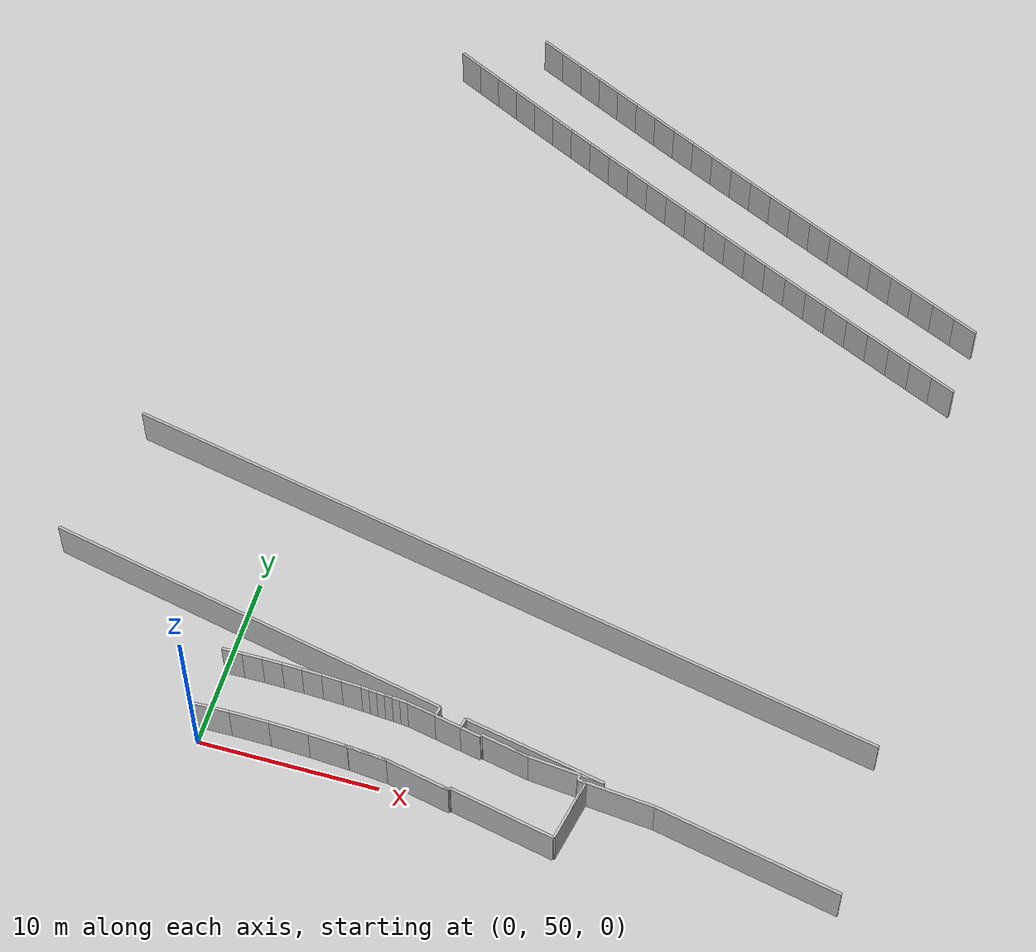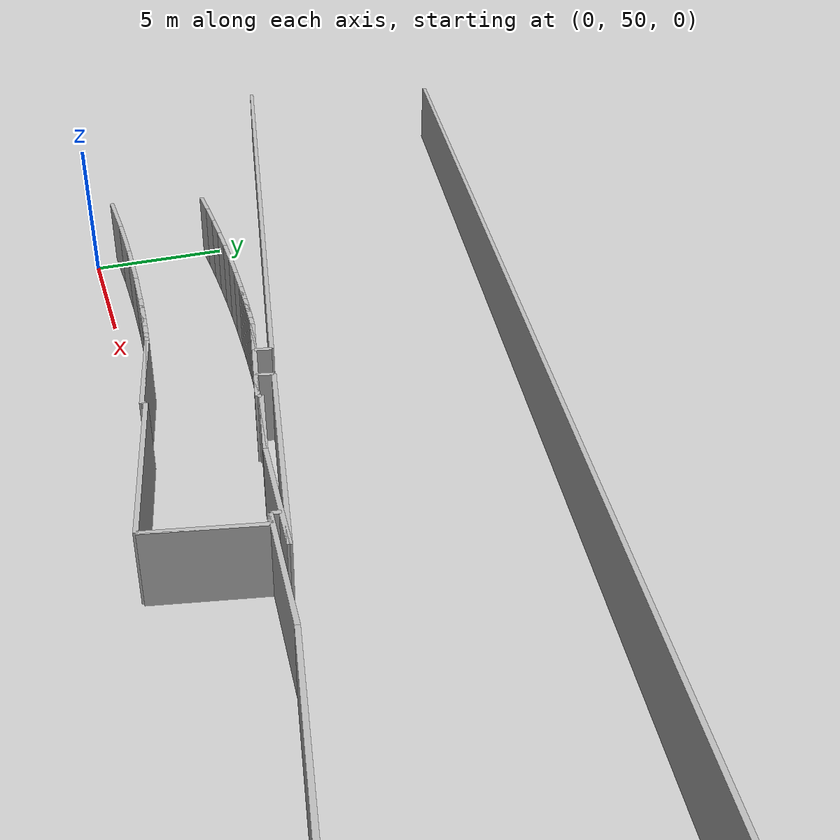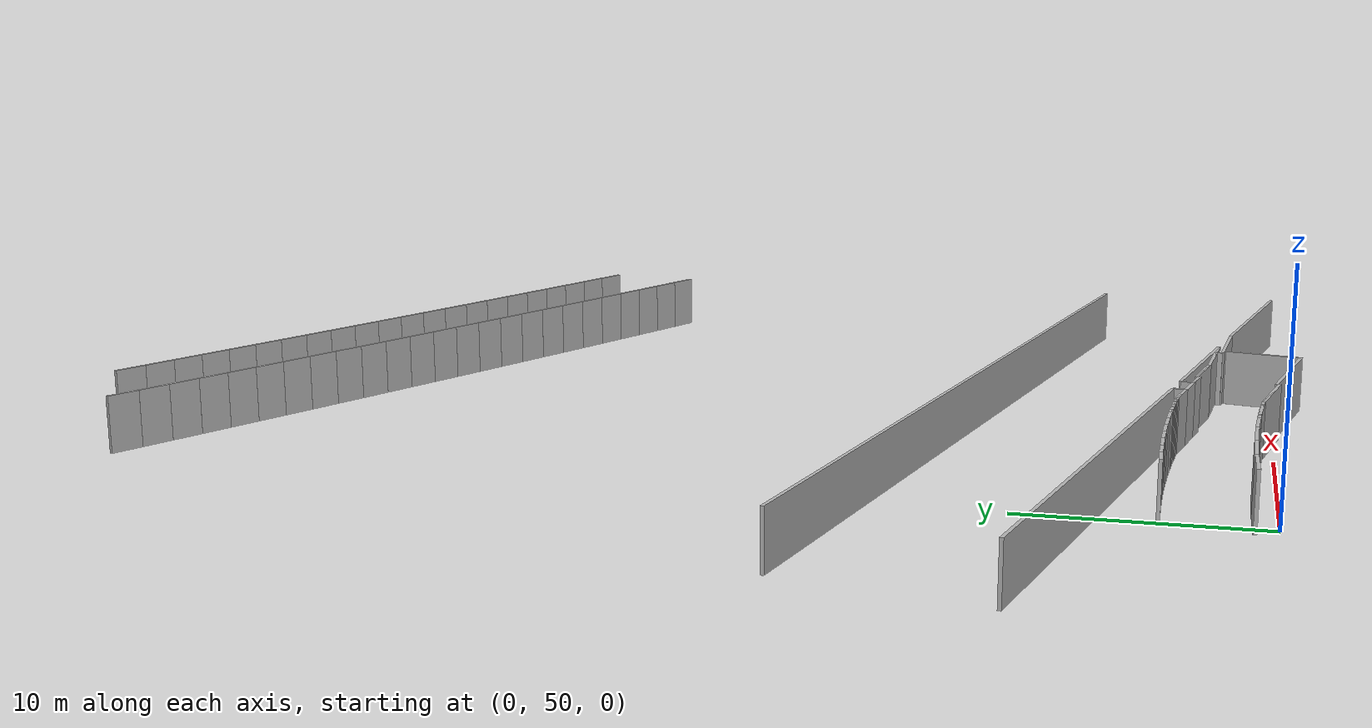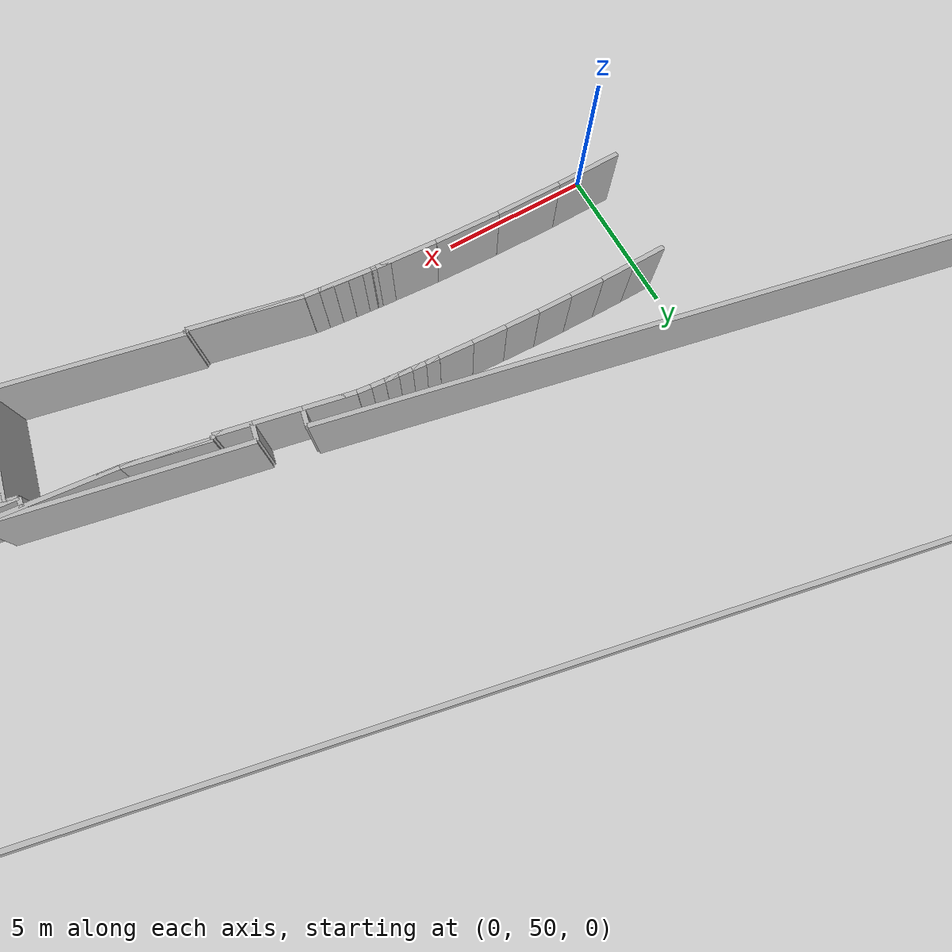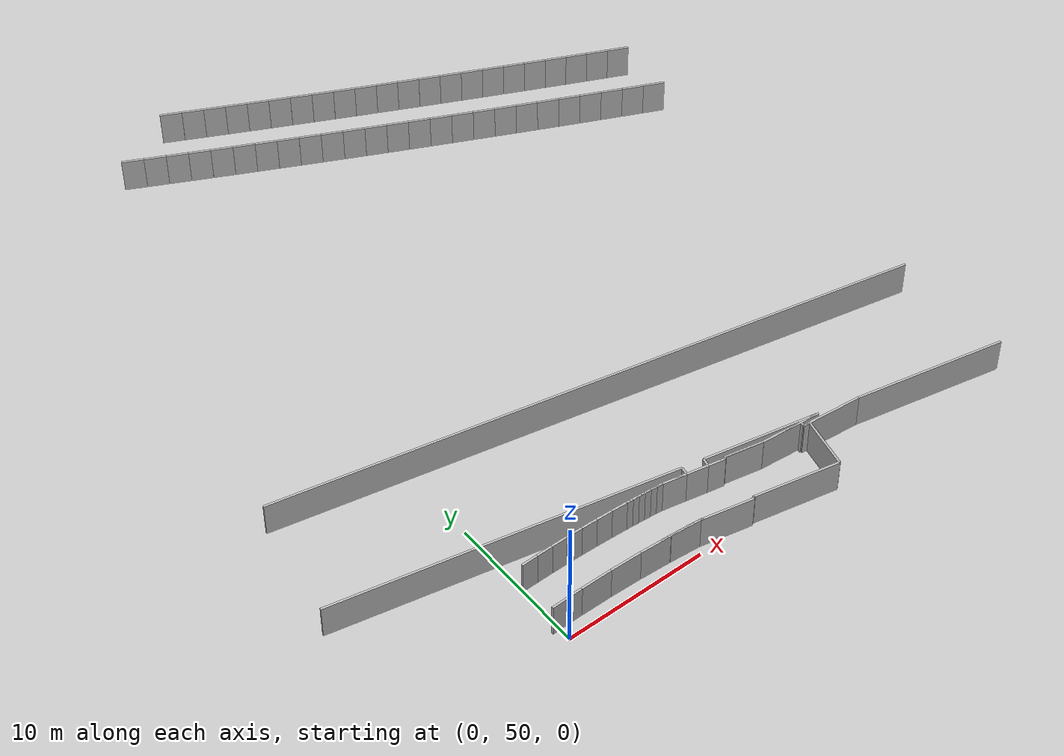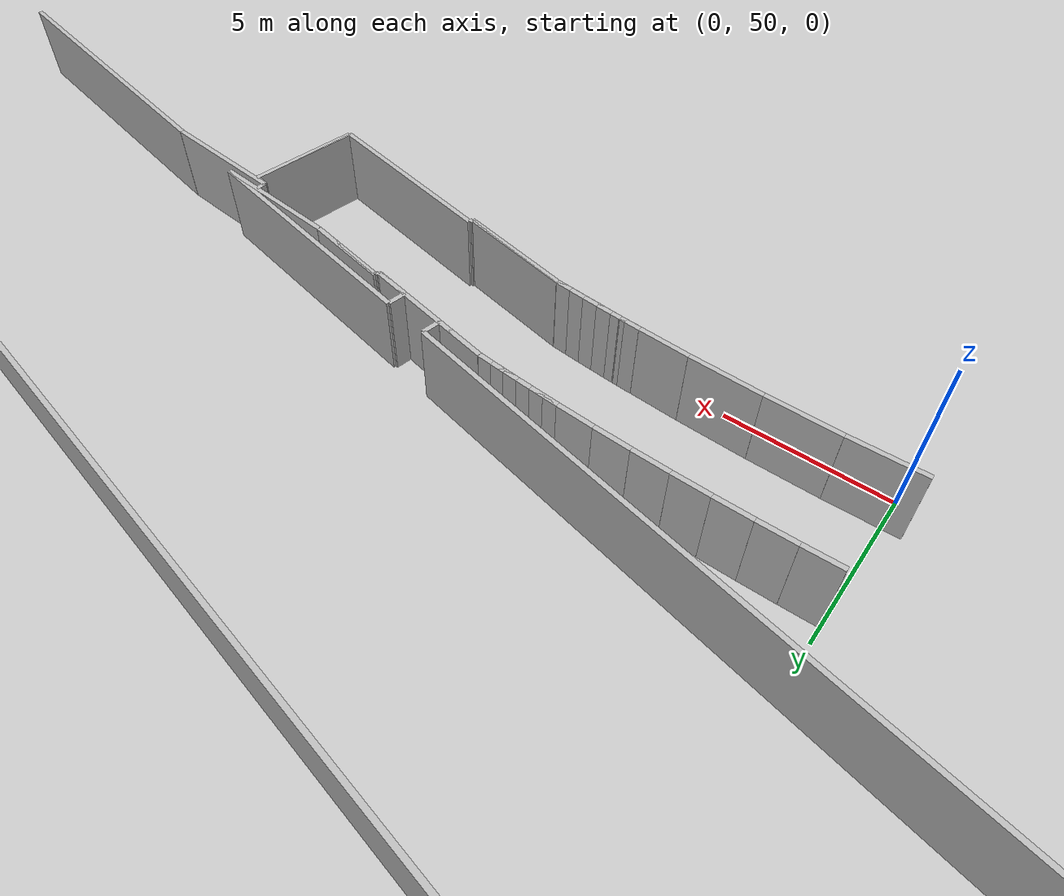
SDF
<sdf version="1.6">
 <model name="sps_0702">
  <static>1</static>
  <allow_auto_disable>0</allow_auto_disable>
  <link name="Wall19">
   <collision name="collision"><geometry><box><size>0.558052 0.15 2.5</size></box></geometry></collision>
   <visual name="visual">
    <geometry><box><size>0.558052 0.15 2.5</size></box></geometry>
    <transparency>0.0</transparency>
   </visual>
   <pose>13.4909 53.7197 1.25 0 -0 1.37308</pose>
  </link>
  <link name="Wall20">
   <collision name="collision"><geometry><box><size>2.70593 0.15 2.5</size></box></geometry></collision>
   <visual name="visual">
    <geometry><box><size>2.70593 0.15 2.5</size></box></geometry>
    <transparency>0.0</transparency>
   </visual>
   <pose>15.9428 53.0665 1.25 0 -0 2.94384</pose>
  </link>
  <link name="Wall21">
   <collision name="collision"><geometry><box><size>0.432153 0.15 2.5</size></box></geometry></collision>
   <visual name="visual">
    <geometry><box><size>0.432153 0.15 2.5</size></box></geometry>
    <transparency>0.0</transparency>
   </visual>
   <pose>20.2974 52.1939 1.25 0 0 -0.199473</pose>
  </link>
  <link name="Wall23">
   <collision name="collision"><geometry><box><size>44.7209 0.15 2.5</size></box></geometry></collision>
   <visual name="visual">
    <geometry><box><size>44.7209 0.15 2.5</size></box></geometry>
    <transparency>0.0</transparency>
   </visual>
   <pose>12.5686 62.9235 1.25 0 -0 2.9385</pose>
  </link>
  <link name="Wall26">
   <collision name="collision"><geometry><box><size>10.4229 0.15 2.5</size></box></geometry></collision>
   <visual name="visual">
    <geometry><box><size>10.4229 0.15 2.5</size></box></geometry>
    <transparency>0.0</transparency>
   </visual>
   <pose>29.3646 50.7986 1.25 0 -0 2.93901</pose>
  </link>
  <link name="Wall112">
   <collision name="collision"><geometry><box><size>23.6286 0.15 2.5</size></box></geometry></collision>
   <visual name="visual">
    <geometry><box><size>23.6286 0.15 2.5</size></box></geometry>
    <transparency>0.0</transparency>
   </visual>
   <pose>0.518974 56.6976 1.25 0 -0 2.93608</pose>
  </link>
  <link name="Wall113">
   <collision name="collision"><geometry><box><size>1.18026 0.15 2.5</size></box></geometry></collision>
   <visual name="visual">
    <geometry><box><size>1.18026 0.15 2.5</size></box></geometry>
    <transparency>0.0</transparency>
   </visual>
   <pose>14.0147 53.3301 1.25 0 -0 2.94369</pose>
  </link>
  <link name="Wall114">
   <collision name="collision"><geometry><box><size>4.19215 0.15 2.5</size></box></geometry></collision>
   <visual name="visual">
    <geometry><box><size>4.19215 0.15 2.5</size></box></geometry>
    <transparency>0.0</transparency>
   </visual>
   <pose>22.1727 52.0419 1.25 0 -0 3.04853</pose>
  </link>
  <link name="Wall280">
   <collision name="collision"><geometry><box><size>0.558807 0.15 2.5</size></box></geometry></collision>
   <visual name="visual">
    <geometry><box><size>0.558807 0.15 2.5</size></box></geometry>
    <transparency>0.0</transparency>
   </visual>
   <pose>12.0295 54.0128 1.25 0 -0 1.3719</pose>
  </link>
  <link name="Wall349">
   <collision name="collision"><geometry><box><size>3.64209 0.15 2.5</size></box></geometry></collision>
   <visual name="visual">
    <geometry><box><size>3.64209 0.15 2.5</size></box></geometry>
    <transparency>0.0</transparency>
   </visual>
   <pose>12.1271 50.1795 1.25 0 -0 2.93845</pose>
  </link>
  <link name="Wall350">
   <collision name="collision"><geometry><box><size>0.12085 0.15 2.5</size></box></geometry></collision>
   <visual name="visual">
    <geometry><box><size>0.12085 0.15 2.5</size></box></geometry>
    <transparency>0.0</transparency>
   </visual>
   <pose>13.9228 49.8713 1.25 0 0 -1.77215</pose>
  </link>
  <link name="Wall429">
   <collision name="collision"><geometry><box><size>1.63883 0.15 2.5</size></box></geometry></collision>
   <visual name="visual">
    <geometry><box><size>1.63883 0.15 2.5</size></box></geometry>
    <transparency>0.0</transparency>
   </visual>
   <pose>11.1709 53.9001 1.25 0 0 -0.198009</pose>
  </link>
  <link name="Wall430">
   <collision name="collision"><geometry><box><size>4.19215 0.15 2.5</size></box></geometry></collision>
   <visual name="visual">
    <geometry><box><size>4.19215 0.15 2.5</size></box></geometry>
    <transparency>0.0</transparency>
   </visual>
   <pose>19.3564 52.6059 1.25 0 -0 3.04853</pose>
  </link>
  <link name="Wall431">
   <collision name="collision"><geometry><box><size>8.0547 0.15 2.5</size></box></geometry></collision>
   <visual name="visual">
    <geometry><box><size>8.0547 0.15 2.5</size></box></geometry>
    <transparency>0.0</transparency>
   </visual>
   <pose>17.4946 53.2022 1.25 0 -0 2.94387</pose>
  </link>
  <link name="Wall524">
   <collision name="collision"><geometry><box><size>3.50128 0.15 2.5</size></box></geometry></collision>
   <visual name="visual">
    <geometry><box><size>3.50128 0.15 2.5</size></box></geometry>
    <transparency>0.0</transparency>
   </visual>
   <pose>20.1558 50.4365 1.25 0 0 -1.77406</pose>
  </link>
  <link name="Wall607">
   <collision name="collision"><geometry><box><size>0.120432 0.15 2.5</size></box></geometry></collision>
   <visual name="visual">
    <geometry><box><size>0.120432 0.15 2.5</size></box></geometry>
    <transparency>0.0</transparency>
   </visual>
   <pose>14.6048 53.2732 1.25 0 0 -1.76253</pose>
  </link>
  <link name="Wall1723">
   <collision name="collision"><geometry><box><size>1.1106 0.15 2.5</size></box></geometry></collision>
   <visual name="visual">
    <geometry><box><size>1.1106 0.15 2.5</size></box></geometry>
    <transparency>0.0</transparency>
   </visual>
   <pose>0.546867 54.4314 1.25 0 -0 0.0181918</pose>
  </link>
  <link name="Wall1724">
   <collision name="collision"><geometry><box><size>1.11043 0.15 2.5</size></box></geometry></collision>
   <visual name="visual">
    <geometry><box><size>1.11043 0.15 2.5</size></box></geometry>
    <transparency>0.0</transparency>
   </visual>
   <pose>1.65728 54.4446 1.25 0 -0 0.00560649</pose>
  </link>
  <link name="Wall1725">
   <collision name="collision"><geometry><box><size>1.11038 0.15 2.5</size></box></geometry></collision>
   <visual name="visual">
    <geometry><box><size>1.11038 0.15 2.5</size></box></geometry>
    <transparency>0.0</transparency>
   </visual>
   <pose>2.76766 54.4436 1.25 0 0 -0.00742071</pose>
  </link>
  <link name="Wall1726">
   <collision name="collision"><geometry><box><size>1.11063 0.15 2.5</size></box></geometry></collision>
   <visual name="visual">
    <geometry><box><size>1.11063 0.15 2.5</size></box></geometry>
    <transparency>0.0</transparency>
   </visual>
   <pose>3.87804 54.4285 1.25 0 0 -0.0197852</pose>
  </link>
  <link name="Wall1727">
   <collision name="collision"><geometry><box><size>1.11039 0.15 2.5</size></box></geometry></collision>
   <visual name="visual">
    <geometry><box><size>1.11039 0.15 2.5</size></box></geometry>
    <transparency>0.0</transparency>
   </visual>
   <pose>4.98815 54.3994 1.25 0 0 -0.0326013</pose>
  </link>
  <link name="Wall1728">
   <collision name="collision"><geometry><box><size>1.11033 0.15 2.5</size></box></geometry></collision>
   <visual name="visual">
    <geometry><box><size>1.11033 0.15 2.5</size></box></geometry>
    <transparency>0.0</transparency>
   </visual>
   <pose>6.09765 54.3562 1.25 0 0 -0.045256</pose>
  </link>
  <link name="Wall1729">
   <collision name="collision"><geometry><box><size>1.11041 0.15 2.5</size></box></geometry></collision>
   <visual name="visual">
    <geometry><box><size>1.11041 0.15 2.5</size></box></geometry>
    <transparency>0.0</transparency>
   </visual>
   <pose>7.20653 54.2992 1.25 0 0 -0.0574712</pose>
  </link>
  <link name="Wall1730">
   <collision name="collision"><geometry><box><size>0.436024 0.15 2.5</size></box></geometry></collision>
   <visual name="visual">
    <geometry><box><size>0.436024 0.15 2.5</size></box></geometry>
    <transparency>0.0</transparency>
   </visual>
   <pose>7.97835 54.2528 1.25 0 0 -0.0665402</pose>
  </link>
  <link name="Wall1731">
   <collision name="collision"><geometry><box><size>0.435871 0.15 2.5</size></box></geometry></collision>
   <visual name="visual">
    <geometry><box><size>0.435871 0.15 2.5</size></box></geometry>
    <transparency>0.0</transparency>
   </visual>
   <pose>8.41326 54.2227 1.25 0 0 -0.0716167</pose>
  </link>
  <link name="Wall1732">
   <collision name="collision"><geometry><box><size>0.435715 0.15 2.5</size></box></geometry></collision>
   <visual name="visual">
    <geometry><box><size>0.435715 0.15 2.5</size></box></geometry>
    <transparency>0.0</transparency>
   </visual>
   <pose>8.84786 54.1905 1.25 0 0 -0.0762777</pose>
  </link>
  <link name="Wall1733">
   <collision name="collision"><geometry><box><size>0.435827 0.15 2.5</size></box></geometry></collision>
   <visual name="visual">
    <geometry><box><size>0.435827 0.15 2.5</size></box></geometry>
    <transparency>0.0</transparency>
   </visual>
   <pose>9.28228 54.1562 1.25 0 0 -0.0813153</pose>
  </link>
  <link name="Wall1734">
   <collision name="collision"><geometry><box><size>0.435813 0.15 2.5</size></box></geometry></collision>
   <visual name="visual">
    <geometry><box><size>0.435813 0.15 2.5</size></box></geometry>
    <transparency>0.0</transparency>
   </visual>
   <pose>9.71657 54.1198 1.25 0 0 -0.0859558</pose>
  </link>
  <link name="Wall1735">
   <collision name="collision"><geometry><box><size>0.435781 0.15 2.5</size></box></geometry></collision>
   <visual name="visual">
    <geometry><box><size>0.435781 0.15 2.5</size></box></geometry>
    <transparency>0.0</transparency>
   </visual>
   <pose>10.1507 54.0812 1.25 0 0 -0.0914461</pose>
  </link>
  <link name="Wall1736">
   <collision name="collision"><geometry><box><size>1.63901 0.15 2.5</size></box></geometry></collision>
   <visual name="visual">
    <geometry><box><size>1.63901 0.15 2.5</size></box></geometry>
    <transparency>0.0</transparency>
   </visual>
   <pose>11.1711 53.9001 1.25 0 0 -0.197987</pose>
  </link>
  <link name="Wall1737">
   <collision name="collision"><geometry><box><size>1.49061 0.15 2.5</size></box></geometry></collision>
   <visual name="visual">
    <geometry><box><size>1.49061 0.15 2.5</size></box></geometry>
    <transparency>0.0</transparency>
   </visual>
   <pose>12.7054 53.5926 1.25 0 0 -0.19758</pose>
  </link>
  <link name="Wall1738">
   <collision name="collision"><geometry><box><size>1.1803 0.15 2.5</size></box></geometry></collision>
   <visual name="visual">
    <geometry><box><size>1.1803 0.15 2.5</size></box></geometry>
    <transparency>0.0</transparency>
   </visual>
   <pose>14.0149 53.3302 1.25 0 0 -0.198055</pose>
  </link>
  <link name="Wall1739">
   <collision name="collision"><geometry><box><size>0.120623 0.15 2.5</size></box></geometry></collision>
   <visual name="visual">
    <geometry><box><size>0.120623 0.15 2.5</size></box></geometry>
    <transparency>0.0</transparency>
   </visual>
   <pose>14.605 53.2733 1.25 0 -0 1.37886</pose>
  </link>
  <link name="Wall1740">
   <collision name="collision"><geometry><box><size>2.70597 0.15 2.5</size></box></geometry></collision>
   <visual name="visual">
    <geometry><box><size>2.70597 0.15 2.5</size></box></geometry>
    <transparency>0.0</transparency>
   </visual>
   <pose>15.9431 53.0666 1.25 0 0 -0.197816</pose>
  </link>
  <link name="Wall1741">
   <collision name="collision"><geometry><box><size>2.85635 0.15 2.5</size></box></geometry></collision>
   <visual name="visual">
    <geometry><box><size>2.85635 0.15 2.5</size></box></geometry>
    <transparency>0.0</transparency>
   </visual>
   <pose>18.6917 52.668 1.25 0 0 -0.0930433</pose>
  </link>
  <link name="Wall1742">
   <collision name="collision"><geometry><box><size>0.299878 0.15 2.5</size></box></geometry></collision>
   <visual name="visual">
    <geometry><box><size>0.299878 0.15 2.5</size></box></geometry>
    <transparency>0.0</transparency>
   </visual>
   <pose>20.0998 52.386 1.25 0 0 -1.66374</pose>
  </link>
  <link name="Wall1743">
   <collision name="collision"><geometry><box><size>0.432213 0.15 2.5</size></box></geometry></collision>
   <visual name="visual">
    <geometry><box><size>0.432213 0.15 2.5</size></box></geometry>
    <transparency>0.0</transparency>
   </visual>
   <pose>20.2977 52.1939 1.25 0 0 -0.199445</pose>
  </link>
  <link name="Wall1744">
   <collision name="collision"><geometry><box><size>3.50124 0.15 2.5</size></box></geometry></collision>
   <visual name="visual">
    <geometry><box><size>3.50124 0.15 2.5</size></box></geometry>
    <transparency>0.0</transparency>
   </visual>
   <pose>20.1562 50.4365 1.25 0 0 -1.77401</pose>
  </link>
  <link name="Wall1745">
   <collision name="collision"><geometry><box><size>5.9908 0.15 2.5</size></box></geometry></collision>
   <visual name="visual">
    <geometry><box><size>5.9908 0.15 2.5</size></box></geometry>
    <transparency>0.0</transparency>
   </visual>
   <pose>16.8691 49.3262 1.25 0 -0 2.93845</pose>
  </link>
  <link name="Wall1746">
   <collision name="collision"><geometry><box><size>0.120899 0.15 2.5</size></box></geometry></collision>
   <visual name="visual">
    <geometry><box><size>0.120899 0.15 2.5</size></box></geometry>
    <transparency>0.0</transparency>
   </visual>
   <pose>13.9231 49.8713 1.25 0 0 -1.77413</pose>
  </link>
  <link name="Wall1747">
   <collision name="collision"><geometry><box><size>3.64191 0.15 2.5</size></box></geometry></collision>
   <visual name="visual">
    <geometry><box><size>3.64191 0.15 2.5</size></box></geometry>
    <transparency>0.0</transparency>
   </visual>
   <pose>12.1273 50.1795 1.25 0 -0 2.93844</pose>
  </link>
  <link name="Wall1748">
   <collision name="collision"><geometry><box><size>2.18198 0.15 2.5</size></box></geometry></collision>
   <visual name="visual">
    <geometry><box><size>2.18198 0.15 2.5</size></box></geometry>
    <transparency>0.0</transparency>
   </visual>
   <pose>9.25674 50.639 1.25 0 -0 3.05707</pose>
  </link>
  <link name="Wall1749">
   <collision name="collision"><geometry><box><size>2.18191 0.15 2.5</size></box></geometry></collision>
   <visual name="visual">
    <geometry><box><size>2.18191 0.15 2.5</size></box></geometry>
    <transparency>0.0</transparency>
   </visual>
   <pose>7.08056 50.795 1.25 0 -0 3.08298</pose>
  </link>
  <link name="Wall1750">
   <collision name="collision"><geometry><box><size>2.18202 0.15 2.5</size></box></geometry></collision>
   <visual name="visual">
    <geometry><box><size>2.18202 0.15 2.5</size></box></geometry>
    <transparency>0.0</transparency>
   </visual>
   <pose>4.90105 50.8947 1.25 0 -0 3.10878</pose>
  </link>
  <link name="Wall1751">
   <collision name="collision"><geometry><box><size>2.18182 0.15 2.5</size></box></geometry></collision>
   <visual name="visual">
    <geometry><box><size>2.18182 0.15 2.5</size></box></geometry>
    <transparency>0.0</transparency>
   </visual>
   <pose>2.71975 50.9381 1.25 0 -0 3.13463</pose>
  </link>
  <link name="Wall1752">
   <collision name="collision"><geometry><box><size>2.18203 0.15 2.5</size></box></geometry></collision>
   <visual name="visual">
    <geometry><box><size>2.18203 0.15 2.5</size></box></geometry>
    <transparency>0.0</transparency>
   </visual>
   <pose>0.538047 50.9251 1.25 0 0 -3.12271</pose>
  </link>
  <link name="Wall2728">
   <collision name="collision"><geometry><box><size>0.469425 0.15 2.5</size></box></geometry></collision>
   <visual name="visual">
    <geometry><box><size>0.469425 0.15 2.5</size></box></geometry>
    <transparency>0.0</transparency>
   </visual>
   <pose>7.76986 50.7585 1.25 0 0 -0.0666201</pose>
  </link>
  <link name="Wall2729">
   <collision name="collision"><geometry><box><size>0.469616 0.15 2.5</size></box></geometry></collision>
   <visual name="visual">
    <geometry><box><size>0.469616 0.15 2.5</size></box></geometry>
    <transparency>0.0</transparency>
   </visual>
   <pose>8.23824 50.7259 1.25 0 0 -0.0724557</pose>
  </link>
  <link name="Wall2730">
   <collision name="collision"><geometry><box><size>0.469443 0.15 2.5</size></box></geometry></collision>
   <visual name="visual">
    <geometry><box><size>0.469443 0.15 2.5</size></box></geometry>
    <transparency>0.0</transparency>
   </visual>
   <pose>8.70644 50.6906 1.25 0 0 -0.0779585</pose>
  </link>
  <link name="Wall2731">
   <collision name="collision"><geometry><box><size>0.469417 0.15 2.5</size></box></geometry></collision>
   <visual name="visual">
    <geometry><box><size>0.469417 0.15 2.5</size></box></geometry>
    <transparency>0.0</transparency>
   </visual>
   <pose>9.17434 50.6527 1.25 0 0 -0.0837027</pose>
  </link>
  <link name="Wall2732">
   <collision name="collision"><geometry><box><size>0.469715 0.15 2.5</size></box></geometry></collision>
   <visual name="visual">
    <geometry><box><size>0.469715 0.15 2.5</size></box></geometry>
    <transparency>0.0</transparency>
   </visual>
   <pose>9.64214 50.6121 1.25 0 0 -0.0895188</pose>
  </link>
  <link name="Wall2733">
   <collision name="collision"><geometry><box><size>0.469491 0.15 2.5</size></box></geometry></collision>
   <visual name="visual">
    <geometry><box><size>0.469491 0.15 2.5</size></box></geometry>
    <transparency>0.0</transparency>
   </visual>
   <pose>10.1098 50.569 1.25 0 0 -0.0942615</pose>
  </link>
  <link name="Wall3571">
   <collision name="collision"><geometry><box><size>0.43595 0.15 2.5</size></box></geometry></collision>
   <visual name="visual">
    <geometry><box><size>0.43595 0.15 2.5</size></box></geometry>
    <transparency>0.0</transparency>
   </visual>
   <pose>7.97814 54.2527 1.25 0 0 -0.0661305</pose>
  </link>
  <link name="Wall3572">
   <collision name="collision"><geometry><box><size>0.435749 0.15 2.5</size></box></geometry></collision>
   <visual name="visual">
    <geometry><box><size>0.435749 0.15 2.5</size></box></geometry>
    <transparency>0.0</transparency>
   </visual>
   <pose>8.41296 54.2227 1.25 0 0 -0.0716368</pose>
  </link>
  <link name="Wall3573">
   <collision name="collision"><geometry><box><size>0.435837 0.15 2.5</size></box></geometry></collision>
   <visual name="visual">
    <geometry><box><size>0.435837 0.15 2.5</size></box></geometry>
    <transparency>0.0</transparency>
   </visual>
   <pose>8.84756 54.1905 1.25 0 0 -0.0762563</pose>
  </link>
  <link name="Wall3574">
   <collision name="collision"><geometry><box><size>0.435827 0.15 2.5</size></box></geometry></collision>
   <visual name="visual">
    <geometry><box><size>0.435827 0.15 2.5</size></box></geometry>
    <transparency>0.0</transparency>
   </visual>
   <pose>9.28204 54.1562 1.25 0 0 -0.0813153</pose>
  </link>
  <link name="Wall3575">
   <collision name="collision"><geometry><box><size>0.435829 0.15 2.5</size></box></geometry></collision>
   <visual name="visual">
    <geometry><box><size>0.435829 0.15 2.5</size></box></geometry>
    <transparency>0.0</transparency>
   </visual>
   <pose>9.71633 54.1197 1.25 0 0 -0.0863744</pose>
  </link>
  <link name="Wall3576">
   <collision name="collision"><geometry><box><size>0.435825 0.15 2.5</size></box></geometry></collision>
   <visual name="visual">
    <geometry><box><size>0.435825 0.15 2.5</size></box></geometry>
    <transparency>0.0</transparency>
   </visual>
   <pose>10.1504 54.0811 1.25 0 0 -0.0910149</pose>
  </link>
  <link name="Wall8750">
   <collision name="collision"><geometry><box><size>1.49888 0.15 2.5</size></box></geometry></collision>
   <visual name="visual">
    <geometry><box><size>1.49888 0.15 2.5</size></box></geometry>
    <transparency>0.0</transparency>
   </visual>
   <pose>0.674766 97.654 1.25 0 0 -0.473117</pose>
  </link>
  <link name="Wall8751">
   <collision name="collision"><geometry><box><size>1.49894 0.15 2.5</size></box></geometry></collision>
   <visual name="visual">
    <geometry><box><size>1.49894 0.15 2.5</size></box></geometry>
    <transparency>0.0</transparency>
   </visual>
   <pose>2.00957 96.9721 1.25 0 0 -0.471496</pose>
  </link>
  <link name="Wall8752">
   <collision name="collision"><geometry><box><size>1.49895 0.15 2.5</size></box></geometry></collision>
   <visual name="visual">
    <geometry><box><size>1.49895 0.15 2.5</size></box></geometry>
    <transparency>0.0</transparency>
   </visual>
   <pose>3.34545 96.2922 1.25 0 0 -0.470076</pose>
  </link>
  <link name="Wall8753">
   <collision name="collision"><geometry><box><size>1.49904 0.15 2.5</size></box></geometry></collision>
   <visual name="visual">
    <geometry><box><size>1.49904 0.15 2.5</size></box></geometry>
    <transparency>0.0</transparency>
   </visual>
   <pose>4.68246 95.6144 1.25 0 0 -0.468309</pose>
  </link>
  <link name="Wall8754">
   <collision name="collision"><geometry><box><size>1.49893 0.15 2.5</size></box></geometry></collision>
   <visual name="visual">
    <geometry><box><size>1.49893 0.15 2.5</size></box></geometry>
    <transparency>0.0</transparency>
   </visual>
   <pose>6.02056 94.9388 1.25 0 0 -0.466798</pose>
  </link>
  <link name="Wall8755">
   <collision name="collision"><geometry><box><size>1.49889 0.15 2.5</size></box></geometry></collision>
   <visual name="visual">
    <geometry><box><size>1.49889 0.15 2.5</size></box></geometry>
    <transparency>0.0</transparency>
   </visual>
   <pose>7.35964 94.2653 1.25 0 0 -0.465214</pose>
  </link>
  <link name="Wall8756">
   <collision name="collision"><geometry><box><size>1.49908 0.15 2.5</size></box></geometry></collision>
   <visual name="visual">
    <geometry><box><size>1.49908 0.15 2.5</size></box></geometry>
    <transparency>0.0</transparency>
   </visual>
   <pose>8.69985 93.5939 1.25 0 0 -0.463648</pose>
  </link>
  <link name="Wall8757">
   <collision name="collision"><geometry><box><size>1.49887 0.15 2.5</size></box></geometry></collision>
   <visual name="visual">
    <geometry><box><size>1.49887 0.15 2.5</size></box></geometry>
    <transparency>0.0</transparency>
   </visual>
   <pose>10.0412 92.9247 1.25 0 0 -0.461899</pose>
  </link>
  <link name="Wall8758">
   <collision name="collision"><geometry><box><size>1.49887 0.15 2.5</size></box></geometry></collision>
   <visual name="visual">
    <geometry><box><size>1.49887 0.15 2.5</size></box></geometry>
    <transparency>0.0</transparency>
   </visual>
   <pose>11.3834 92.2577 1.25 0 0 -0.460442</pose>
  </link>
  <link name="Wall8759">
   <collision name="collision"><geometry><box><size>1.49891 0.15 2.5</size></box></geometry></collision>
   <visual name="visual">
    <geometry><box><size>1.49891 0.15 2.5</size></box></geometry>
    <transparency>0.0</transparency>
   </visual>
   <pose>12.7267 91.5927 1.25 0 0 -0.458931</pose>
  </link>
  <link name="Wall8760">
   <collision name="collision"><geometry><box><size>1.49903 0.15 2.5</size></box></geometry></collision>
   <visual name="visual">
    <geometry><box><size>1.49903 0.15 2.5</size></box></geometry>
    <transparency>0.0</transparency>
   </visual>
   <pose>14.0712 90.9298 1.25 0 0 -0.457256</pose>
  </link>
  <link name="Wall8761">
   <collision name="collision"><geometry><box><size>1.49894 0.15 2.5</size></box></geometry></collision>
   <visual name="visual">
    <geometry><box><size>1.49894 0.15 2.5</size></box></geometry>
    <transparency>0.0</transparency>
   </visual>
   <pose>15.4167 90.2691 1.25 0 0 -0.455653</pose>
  </link>
  <link name="Wall8762">
   <collision name="collision"><geometry><box><size>1.4991 0.15 2.5</size></box></geometry></collision>
   <visual name="visual">
    <geometry><box><size>1.4991 0.15 2.5</size></box></geometry>
    <transparency>0.0</transparency>
   </visual>
   <pose>16.7633 89.6105 1.25 0 0 -0.454106</pose>
  </link>
  <link name="Wall8763">
   <collision name="collision"><geometry><box><size>1.49876 0.15 2.5</size></box></geometry></collision>
   <visual name="visual">
    <geometry><box><size>1.49876 0.15 2.5</size></box></geometry>
    <transparency>0.0</transparency>
   </visual>
   <pose>18.1107 88.9539 1.25 0 0 -0.45272</pose>
  </link>
  <link name="Wall8764">
   <collision name="collision"><geometry><box><size>1.49904 0.15 2.5</size></box></geometry></collision>
   <visual name="visual">
    <geometry><box><size>1.49904 0.15 2.5</size></box></geometry>
    <transparency>0.0</transparency>
   </visual>
   <pose>19.4593 88.2995 1.25 0 0 -0.450865</pose>
  </link>
  <link name="Wall8765">
   <collision name="collision"><geometry><box><size>1.49885 0.15 2.5</size></box></geometry></collision>
   <visual name="visual">
    <geometry><box><size>1.49885 0.15 2.5</size></box></geometry>
    <transparency>0.0</transparency>
   </visual>
   <pose>20.8089 87.6473 1.25 0 0 -0.449479</pose>
  </link>
  <link name="Wall8766">
   <collision name="collision"><geometry><box><size>1.49897 0.15 2.5</size></box></geometry></collision>
   <visual name="visual">
    <geometry><box><size>1.49897 0.15 2.5</size></box></geometry>
    <transparency>0.0</transparency>
   </visual>
   <pose>22.1594 86.9972 1.25 0 0 -0.447768</pose>
  </link>
  <link name="Wall8767">
   <collision name="collision"><geometry><box><size>1.49904 0.15 2.5</size></box></geometry></collision>
   <visual name="visual">
    <geometry><box><size>1.49904 0.15 2.5</size></box></geometry>
    <transparency>0.0</transparency>
   </visual>
   <pose>23.5112 86.3492 1.25 0 0 -0.446257</pose>
  </link>
  <link name="Wall8768">
   <collision name="collision"><geometry><box><size>1.49884 0.15 2.5</size></box></geometry></collision>
   <visual name="visual">
    <geometry><box><size>1.49884 0.15 2.5</size></box></geometry>
    <transparency>0.0</transparency>
   </visual>
   <pose>24.8639 85.7034 1.25 0 0 -0.444561</pose>
  </link>
  <link name="Wall8769">
   <collision name="collision"><geometry><box><size>1.49899 0.15 2.5</size></box></geometry></collision>
   <visual name="visual">
    <geometry><box><size>1.49899 0.15 2.5</size></box></geometry>
    <transparency>0.0</transparency>
   </visual>
   <pose>26.2176 85.0598 1.25 0 0 -0.44307</pose>
  </link>
  <link name="Wall8770">
   <collision name="collision"><geometry><box><size>1.49893 0.15 2.5</size></box></geometry></collision>
   <visual name="visual">
    <geometry><box><size>1.49893 0.15 2.5</size></box></geometry>
    <transparency>0.0</transparency>
   </visual>
   <pose>27.5723 84.4182 1.25 0 0 -0.441557</pose>
  </link>
  <link name="Wall8771">
   <collision name="collision"><geometry><box><size>1.49888 0.15 2.5</size></box></geometry></collision>
   <visual name="visual">
    <geometry><box><size>1.49888 0.15 2.5</size></box></geometry>
    <transparency>0.0</transparency>
   </visual>
   <pose>28.9279 83.7788 1.25 0 0 -0.439862</pose>
  </link>
  <link name="Wall8772">
   <collision name="collision"><geometry><box><size>1.49901 0.15 2.5</size></box></geometry></collision>
   <visual name="visual">
    <geometry><box><size>1.49901 0.15 2.5</size></box></geometry>
    <transparency>0.0</transparency>
   </visual>
   <pose>30.2847 83.1415 1.25 0 0 -0.438425</pose>
  </link>
  <link name="Wall8773">
   <collision name="collision"><geometry><box><size>1.49886 0.15 2.5</size></box></geometry></collision>
   <visual name="visual">
    <geometry><box><size>1.49886 0.15 2.5</size></box></geometry>
    <transparency>0.0</transparency>
   </visual>
   <pose>31.6424 82.5063 1.25 0 0 -0.436765</pose>
  </link>
  <link name="Wall8774">
   <collision name="collision"><geometry><box><size>1.49901 0.15 2.5</size></box></geometry></collision>
   <visual name="visual">
    <geometry><box><size>1.49901 0.15 2.5</size></box></geometry>
    <transparency>0.0</transparency>
   </visual>
   <pose>33.0011 81.8733 1.25 0 0 -0.435237</pose>
  </link>
  <link name="Wall9833">
   <collision name="collision"><geometry><box><size>1.49256 0.15 2.5</size></box></geometry></collision>
   <visual name="visual">
    <geometry><box><size>1.49256 0.15 2.5</size></box></geometry>
    <transparency>0.0</transparency>
   </visual>
   <pose>5.22024 99.9836 1.25 0 0 -0.469866</pose>
  </link>
  <link name="Wall9834">
   <collision name="collision"><geometry><box><size>1.49239 0.15 2.5</size></box></geometry></collision>
   <visual name="visual">
    <geometry><box><size>1.49239 0.15 2.5</size></box></geometry>
    <transparency>0.0</transparency>
   </visual>
   <pose>6.55144 99.3088 1.25 0 0 -0.468458</pose>
  </link>
  <link name="Wall9835">
   <collision name="collision"><geometry><box><size>1.49237 0.15 2.5</size></box></geometry></collision>
   <visual name="visual">
    <geometry><box><size>1.49237 0.15 2.5</size></box></geometry>
    <transparency>0.0</transparency>
   </visual>
   <pose>7.88366 98.6362 1.25 0 0 -0.466629</pose>
  </link>
  <link name="Wall9836">
   <collision name="collision"><geometry><box><size>1.49245 0.15 2.5</size></box></geometry></collision>
   <visual name="visual">
    <geometry><box><size>1.49245 0.15 2.5</size></box></geometry>
    <transparency>0.0</transparency>
   </visual>
   <pose>9.21697 97.9657 1.25 0 0 -0.465275</pose>
  </link>
  <link name="Wall9837">
   <collision name="collision"><geometry><box><size>1.49231 0.15 2.5</size></box></geometry></collision>
   <visual name="visual">
    <geometry><box><size>1.49231 0.15 2.5</size></box></geometry>
    <transparency>0.0</transparency>
   </visual>
   <pose>10.5513 97.2972 1.25 0 0 -0.463629</pose>
  </link>
  <link name="Wall9838">
   <collision name="collision"><geometry><box><size>1.49245 0.15 2.5</size></box></geometry></collision>
   <visual name="visual">
    <geometry><box><size>1.49245 0.15 2.5</size></box></geometry>
    <transparency>0.0</transparency>
   </visual>
   <pose>11.8866 96.6309 1.25 0 0 -0.461983</pose>
  </link>
  <link name="Wall9839">
   <collision name="collision"><geometry><box><size>1.49227 0.15 2.5</size></box></geometry></collision>
   <visual name="visual">
    <geometry><box><size>1.49227 0.15 2.5</size></box></geometry>
    <transparency>0.0</transparency>
   </visual>
   <pose>13.223 95.9667 1.25 0 0 -0.460538</pose>
  </link>
  <link name="Wall9840">
   <collision name="collision"><geometry><box><size>1.49239 0.15 2.5</size></box></geometry></collision>
   <visual name="visual">
    <geometry><box><size>1.49239 0.15 2.5</size></box></geometry>
    <transparency>0.0</transparency>
   </visual>
   <pose>14.5604 95.3046 1.25 0 0 -0.458856</pose>
  </link>
  <link name="Wall9841">
   <collision name="collision"><geometry><box><size>1.49237 0.15 2.5</size></box></geometry></collision>
   <visual name="visual">
    <geometry><box><size>1.49237 0.15 2.5</size></box></geometry>
    <transparency>0.0</transparency>
   </visual>
   <pose>15.8989 94.6446 1.25 0 0 -0.457356</pose>
  </link>
  <link name="Wall9842">
   <collision name="collision"><geometry><box><size>1.4925 0.15 2.5</size></box></geometry></collision>
   <visual name="visual">
    <geometry><box><size>1.4925 0.15 2.5</size></box></geometry>
    <transparency>0.0</transparency>
   </visual>
   <pose>17.2385 93.9867 1.25 0 0 -0.455674</pose>
  </link>
  <link name="Wall9843">
   <collision name="collision"><geometry><box><size>1.49241 0.15 2.5</size></box></geometry></collision>
   <visual name="visual">
    <geometry><box><size>1.49241 0.15 2.5</size></box></geometry>
    <transparency>0.0</transparency>
   </visual>
   <pose>18.5792 93.331 1.25 0 0 -0.454064</pose>
  </link>
  <link name="Wall9844">
   <collision name="collision"><geometry><box><size>1.49246 0.15 2.5</size></box></geometry></collision>
   <visual name="visual">
    <geometry><box><size>1.49246 0.15 2.5</size></box></geometry>
    <transparency>0.0</transparency>
   </visual>
   <pose>19.921 92.6774 1.25 0 0 -0.452546</pose>
  </link>
  <link name="Wall9845">
   <collision name="collision"><geometry><box><size>1.49221 0.15 2.5</size></box></geometry></collision>
   <visual name="visual">
    <geometry><box><size>1.49221 0.15 2.5</size></box></geometry>
    <transparency>0.0</transparency>
   </visual>
   <pose>21.2636 92.0259 1.25 0 0 -0.450989</pose>
  </link>
  <link name="Wall9846">
   <collision name="collision"><geometry><box><size>1.49238 0.15 2.5</size></box></geometry></collision>
   <visual name="visual">
    <geometry><box><size>1.49238 0.15 2.5</size></box></geometry>
    <transparency>0.0</transparency>
   </visual>
   <pose>22.6072 91.3765 1.25 0 0 -0.449436</pose>
  </link>
  <link name="Wall9847">
   <collision name="collision"><geometry><box><size>1.49256 0.15 2.5</size></box></geometry></collision>
   <visual name="visual">
    <geometry><box><size>1.49256 0.15 2.5</size></box></geometry>
    <transparency>0.0</transparency>
   </visual>
   <pose>23.952 90.7292 1.25 0 0 -0.447791</pose>
  </link>
  <link name="Wall9848">
   <collision name="collision"><geometry><box><size>1.49237 0.15 2.5</size></box></geometry></collision>
   <visual name="visual">
    <geometry><box><size>1.49237 0.15 2.5</size></box></geometry>
    <transparency>0.0</transparency>
   </visual>
   <pose>25.2978 90.084 1.25 0 0 -0.446308</pose>
  </link>
  <link name="Wall9849">
   <collision name="collision"><geometry><box><size>1.49231 0.15 2.5</size></box></geometry></collision>
   <visual name="visual">
    <geometry><box><size>1.49231 0.15 2.5</size></box></geometry>
    <transparency>0.0</transparency>
   </visual>
   <pose>26.6445 89.441 1.25 0 0 -0.444606</pose>
  </link>
  <link name="Wall9850">
   <collision name="collision"><geometry><box><size>1.49255 0.15 2.5</size></box></geometry></collision>
   <visual name="visual">
    <geometry><box><size>1.49255 0.15 2.5</size></box></geometry>
    <transparency>0.0</transparency>
   </visual>
   <pose>27.9923 88.8001 1.25 0 0 -0.443127</pose>
  </link>
  <link name="Wall9851">
   <collision name="collision"><geometry><box><size>1.49244 0.15 2.5</size></box></geometry></collision>
   <visual name="visual">
    <geometry><box><size>1.49244 0.15 2.5</size></box></geometry>
    <transparency>0.0</transparency>
   </visual>
   <pose>29.3411 88.1613 1.25 0 0 -0.441442</pose>
  </link>
  <link name="Wall9852">
   <collision name="collision"><geometry><box><size>1.49235 0.15 2.5</size></box></geometry></collision>
   <visual name="visual">
    <geometry><box><size>1.49235 0.15 2.5</size></box></geometry>
    <transparency>0.0</transparency>
   </visual>
   <pose>30.6909 87.5247 1.25 0 0 -0.439978</pose>
  </link>
  <link name="Wall9853">
   <collision name="collision"><geometry><box><size>1.49244 0.15 2.5</size></box></geometry></collision>
   <visual name="visual">
    <geometry><box><size>1.49244 0.15 2.5</size></box></geometry>
    <transparency>0.0</transparency>
   </visual>
   <pose>32.0417 86.8902 1.25 0 0 -0.438278</pose>
  </link>
  <link name="Wall9854">
   <collision name="collision"><geometry><box><size>1.49231 0.15 2.5</size></box></geometry></collision>
   <visual name="visual">
    <geometry><box><size>1.49231 0.15 2.5</size></box></geometry>
    <transparency>0.0</transparency>
   </visual>
   <pose>33.3935 86.2579 1.25 0 0 -0.436738</pose>
  </link>
 </model>
</sdf>
